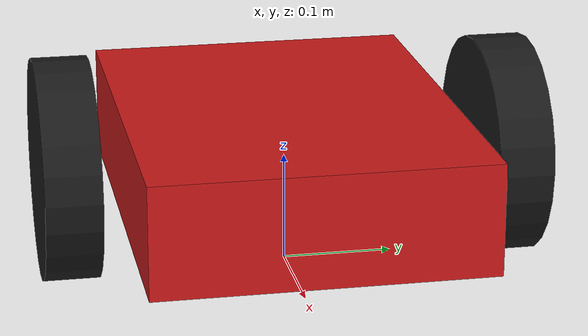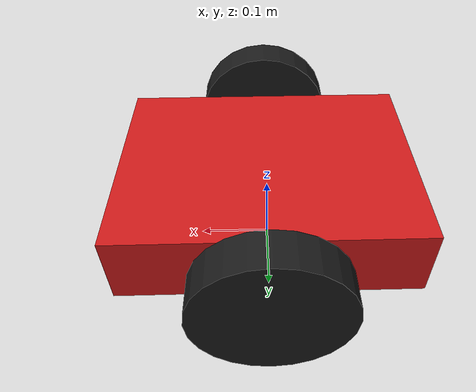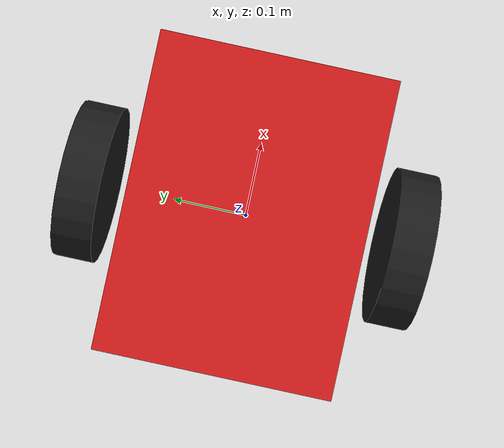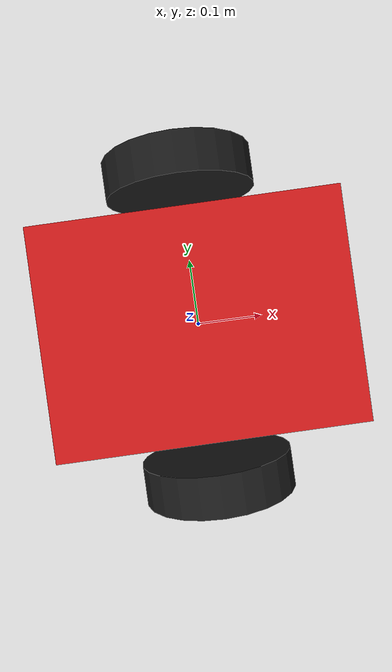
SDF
<?xml version="1.0"?>
<sdf version="1.8">
    <model name="mini_car">
        <self_collide>true</self_collide>

        <link name="base_link">
            <pose>0 0 0.1 0 0 0</pose>
            <inertial>
                <mass>5.0</mass>
                <inertia>
                    <ixx>0.1</ixx> <ixy>0</ixy> <ixz>0</ixz>
                    <iyy>0.1</iyy> <iyz>0</iyz>
                    <izz>0.1</izz>
                </inertia>
            </inertial>
            <collision name="collision">
                <geometry>
                    <box>
                        <size>0.4 0.3 0.1</size>
                    </box>
                </geometry>
            </collision>
            <visual name="visual">
                <geometry>
                    <box>
                        <size>0.4 0.3 0.1</size>
                    </box>
                </geometry>
                <material>
                    <ambient>0.8 0.1 0.1 1</ambient>
                    <diffuse>0.8 0.1 0.1 1</diffuse>
                </material>
            </visual>
        </link>

        <link name="left_wheel">
            <pose>0 0.2 0.1 -1.5707 0 0</pose>
            <inertial>
                <mass>1.0</mass>
                <inertia>
                    <ixx>0.005</ixx> <ixy>0</ixy> <ixz>0</ixz>
                    <iyy>0.005</iyy> <iyz>0</iyz>
                    <izz>0.005</izz>
                </inertia>
            </inertial>
            <collision name="collision">
                <geometry>
                    <cylinder>
                        <radius>0.1</radius>
                        <length>0.05</length>
                    </cylinder>
                </geometry>
            </collision>
            <visual name="visual">
                <geometry>
                    <cylinder>
                        <radius>0.1</radius>
                        <length>0.05</length>
                    </cylinder>
                </geometry>
                <material>
                    <ambient>0.1 0.1 0.1 1</ambient>
                    <diffuse>0.1 0.1 0.1 1</diffuse>
                </material>
            </visual>
        </link>

        <link name="right_wheel">
            <pose>0 -0.2 0.1 -1.5707 0 0</pose>
            <inertial>
                <mass>1.0</mass>
                <inertia>
                    <ixx>0.005</ixx> <ixy>0</ixy> <ixz>0</ixz>
                    <iyy>0.005</iyy> <iyz>0</iyz>
                    <izz>0.005</izz>
                </inertia>
            </inertial>
            <collision name="collision">
                <geometry>
                    <cylinder>
                        <radius>0.1</radius>
                        <length>0.05</length>
                    </cylinder>
                </geometry>
            </collision>
            <visual name="visual">
                <geometry>
                    <cylinder>
                        <radius>0.1</radius>
                        <length>0.05</length>
                    </cylinder>
                </geometry>
                <material>
                    <ambient>0.1 0.1 0.1 1</ambient>
                    <diffuse>0.1 0.1 0.1 1</diffuse>
                </material>
            </visual>
        </link>

        <link name="caster_wheel">
            <pose>-0.15 0 0.05 0 0 0</pose>
            <inertial>
                <mass>0.5</mass>
                <inertia>
                    <ixx>0.001</ixx> <ixy>0</ixy> <ixz>0</ixz>
                    <iyy>0.001</iyy> <iyz>0</iyz>
                    <izz>0.001</izz>
                </inertia>
            </inertial>
            <collision name="collision">
                <geometry>
                    <sphere>
                        <radius>0.05</radius>
                    </sphere>
                </geometry>
            </collision>
            <visual name="visual">
                <geometry>
                    <sphere>
                        <radius>0.05</radius>
                    </sphere>
                </geometry>
                <material>
                    <ambient>0.1 0.1 0.1 1</ambient>
                    <diffuse>0.1 0.1 0.1 1</diffuse>
                </material>
            </visual>
        </link>

        <joint name="left_wheel_joint" type="revolute">
            <parent>base_link</parent>
            <child>left_wheel</child>
            <axis>
                <xyz>0 0 1</xyz>
                <limit>
                    <lower>-1e16</lower>
                    <upper>1e16</upper>
                </limit>
            </axis>
        </joint>

        <joint name="right_wheel_joint" type="revolute">
            <parent>base_link</parent>
            <child>right_wheel</child>
            <axis>
                <xyz>0 0 1</xyz>
                <limit>
                    <lower>-1e16</lower>
                    <upper>1e16</upper>
                </limit>
            </axis>
        </joint>

        <joint name="caster_wheel_joint" type="ball">
            <parent>base_link</parent>
            <child>caster_wheel</child>
        </joint>

        <plugin
            filename="ignition-gazebo-joint-controller-system"
            name="ignition::gazebo::systems::JointController">
            <joint_name>left_wheel_joint</joint_name>
            <use_force_commands>false</use_force_commands>
            <p_gain>0.5</p_gain>
            <i_gain>0.0</i_gain>
            <d_gain>0.0</d_gain>
        </plugin>

        <plugin
            filename="ignition-gazebo-joint-controller-system"
            name="ignition::gazebo::systems::JointController">
            <joint_name>right_wheel_joint</joint_name>
            <use_force_commands>false</use_force_commands>
            <p_gain>0.5</p_gain>
            <i_gain>0.0</i_gain>
            <d_gain>0.0</d_gain>
        </plugin>

    </model>
</sdf>
